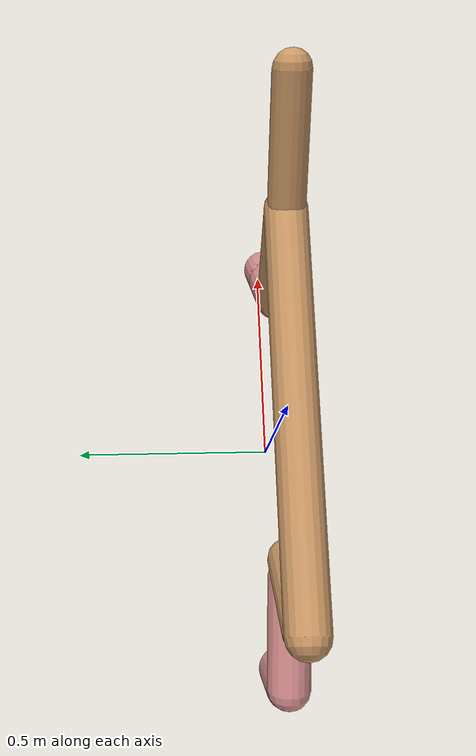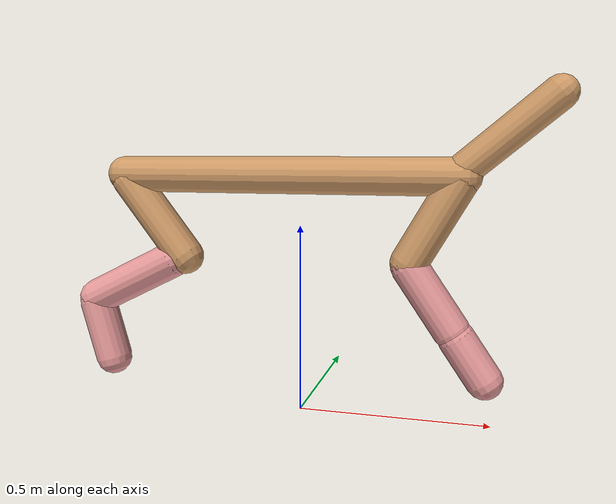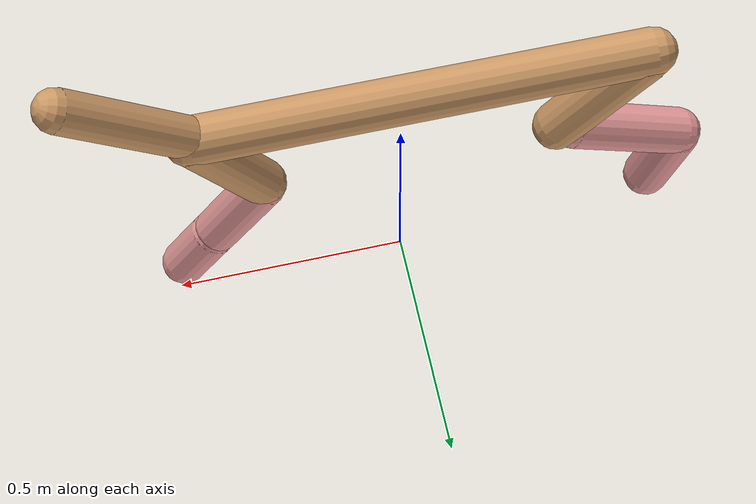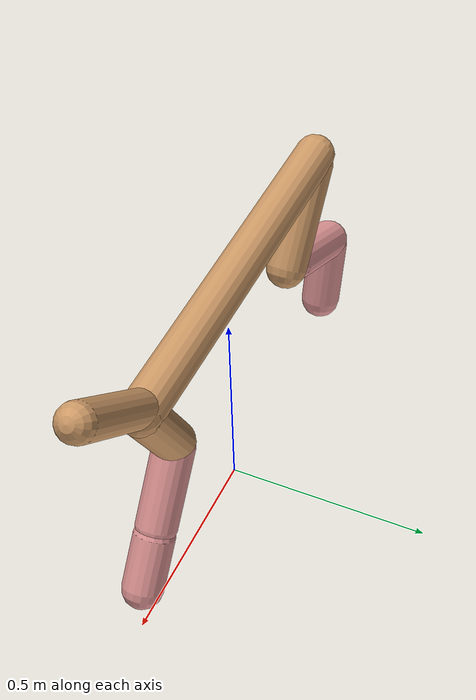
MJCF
<mujoco model="cheetah">
  <compiler angle="radian" coordinate="local" inertiafromgeom="true" settotalmass="14" />
  <default>
    <joint armature=".1" damping=".01" limited="true" solimplimit="0 .8 .03" solreflimit=".02 1" stiffness="8" />
    <geom conaffinity="0" condim="3" contype="1" friction="0.8 .1 .1" rgba="0.8 0.6 .4 1" solimp="0.0 0.8 0.01" solref="0.02 1" />
    <motor ctrllimited="true" ctrlrange="-1 1" />
  </default>
  <size nstack="300000" nuser_geom="1" />
  <option gravity="0 0 -9.81" timestep="0.01" />
  <worldbody>
    <body name="torso" pos="0.0 0.0 0.6311186332260534">
      <joint armature="0" axis="1 0 0" damping="0" limited="false" name="ignorex" pos="0 0 0" stiffness="0" type="slide" />
      <joint armature="0" axis="0 0 1" damping="0" limited="false" name="ignorez" pos="0 0 0" stiffness="0" type="slide" />
      <joint armature="0" axis="0 1 0" damping="0" limited="false" name="ignorey" pos="0 0 0" stiffness="0" type="hinge" />
      <geom fromto="-0.5 0.0 0.0 0.4099787449108306 0.0 0.0" name="torso" size="0.04860892095161865" type="capsule" />
      <geom axisangle="0 1 0 .87" name="head" pos="0.5099787449108305 0.0 0.1" size="0.04245430339468926 0.15" type="capsule" />

      <body name="bthigh" pos="-.5 0 0">
        <joint axis="0 1 0" damping="6" name="bthigh" pos="0 0 0" range="-.52 1.05" stiffness="240" type="hinge" />
        <geom axisangle="0 1 0 -3.8" name="bthigh" pos="0.09189155261946132 0.0 -0.11945901840529971" size="0.04999831103022899 0.13170115749763253" type="capsule" />
        <body name="bshin" pos="0.14378310523892263 0.0 -0.2289180368105994">
          <joint axis="0 1 0" damping="4.5" name="bshin" pos="0 0 0" range="-.785 .785" stiffness="180" type="hinge" />
          <geom axisangle="0 1 0 -2.03" name="bshin" pos="-0.1276949865417833 0.0 -0.06384749327089165" rgba="0.9 0.6 0.6 1" size="0.04999831103022899 0.13624257672168882" type="capsule" />
          <body name="bfoot" pos="-0.2553899730835666 0.0 -0.1276949865417833">
            <joint axis="0 1 0" damping="3" name="bfoot" pos="0 0 0" range="-.4 .785" stiffness="120" type="hinge" />
            <geom axisangle="0 1 0 -.27" name="bfoot" pos="0.0274526613856571 0.0 -0.08876360514695796" rgba="0.9 0.6 0.6 1" size="0.04999831103022899 0.08537868141225834" type="capsule" />
            <inertial mass="10" />
          </body>
        </body>
      </body>
      <body name="fthigh" pos="0.40997874491083053 0.0 0.0">
        <joint axis="0 1 0" damping="4.5" name="fthigh" pos="0 0 0" range="-1.5 0.8" stiffness="180" type="hinge" />
        <geom axisangle="0 1 0 .52" name="fthigh" pos="-0.06517147048764305 0.0 -0.11172252083595949" size="0.04808398234431179 0.12341713202831081" type="capsule" />
        <body name="fshin" pos="-0.1303429409752861 0.0 -0.22344504167191898">
          <joint axis="0 1 0" damping="3" name="fshin" pos="0 0 0" range="-1.2 1.1" stiffness="120" type="hinge" />
          <geom axisangle="0 1 0 -.6" name="fshin" pos="0.0605283312806531 0.0 -0.0838084586962889" rgba="0.9 0.6 0.6 1" size="0.04808398234431179 0.09836252627820259" type="capsule" />
          <body name="ffoot" pos="0.1210566625613062 0.0 -0.1676169173925778">
            <joint axis="0 1 0" damping="1.5" name="ffoot" pos="0 0 0" range="-3.1 -0.3" stiffness="60" type="hinge" />
            <geom axisangle="0 1 0 -.6" name="ffoot" pos="0.04227262705144951 0.0 -0.06575741985781036" rgba="0.9 0.6 0.6 1" size="0.04808398234431179 0.06495638527805832" type="capsule" />
            <inertial mass="10" />
          </body>
        </body>
      </body>
    </body>
  </worldbody>
  <actuator>
    <motor gear="120" joint="bthigh" name="bthigh" />
    <motor gear="90" joint="bshin" name="bshin" />
    <motor gear="60" joint="bfoot" name="bfoot" />
    <motor gear="120" joint="fthigh" name="fthigh" />
    <motor gear="60" joint="fshin" name="fshin" />
    <motor gear="30" joint="ffoot" name="ffoot" />
  </actuator>
</mujoco>
